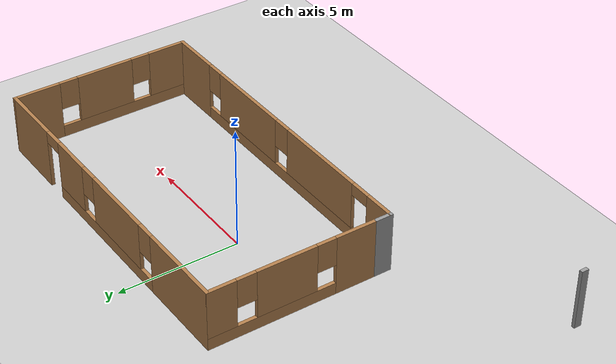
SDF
<sdf version="1.7">
 <world name="default">
  <light name="sun" type="directional">
   <pose>0 0 10 0 -0 0</pose>
   <diffuse>0.8 0.8 0.8 1</diffuse>
   <specular>0.2 0.2 0.2 1</specular>
   <attenuation>
    <range>1000</range>
    <constant>0.9</constant>
    <linear>0.01</linear>
    <quadratic>0.001</quadratic>
   </attenuation>
   <direction>-0.5 0.1 -0.9</direction>
   <spot><inner_angle>0</inner_angle><outer_angle>0</outer_angle><falloff>0</falloff></spot>
  </light>
  <model name="ground_plane">
   <static>1</static>
   <link name="link">
    <collision name="collision">
     <geometry><plane><normal>0 0 1</normal><size>100 100</size></plane></geometry>
     <surface>
      <contact><collide_bitmask>65535</collide_bitmask></contact>
      <friction><ode><mu>100</mu><mu2>50</mu2></ode></friction>
     </surface>
    </collision>
    <visual name="visual">
     <cast_shadows>0</cast_shadows>
     <geometry><plane><normal>0 0 1</normal><size>100 100</size></plane></geometry>
     <material>
      <script><uri>file://media/materials/scripts/gazebo.material</uri><name>Gazebo/Grey</name></script>
     </material>
    </visual>
   </link>
  </model>
  <gravity>0 0 -9.8</gravity>
  <magnetic_field>6e-06 2.3e-05 -4.2e-05</magnetic_field>
  <atmosphere type="adiabatic"/>
  <physics type="ode">
   <max_step_size>0.001</max_step_size>
   <real_time_factor>1</real_time_factor>
   <real_time_update_rate>1000</real_time_update_rate>
  </physics>
  <scene><ambient>0.4 0.4 0.4 1</ambient><background>0.7 0.7 0.7 1</background><shadows>1</shadows></scene>
  <audio><device>default</device></audio>
  <spherical_coordinates>
   <surface_model>EARTH_WGS84</surface_model>
   <latitude_deg>0</latitude_deg>
   <longitude_deg>0</longitude_deg>
   <elevation>0</elevation>
   <heading_deg>0</heading_deg>
  </spherical_coordinates>
  <model name="Test">
   <pose>-0.246704 -1.69561 0 0 -0 0</pose>
   <link name="Wall_0">
    <collision name="Wall_0_Collision">
     <geometry><box><size>0.3 0.15 2.5</size></box></geometry>
     <pose>0 0 1.25 0 -0 0</pose>
    </collision>
    <visual name="Wall_0_Visual">
     <pose>0 0 1.25 0 -0 0</pose>
     <geometry><box><size>0.3 0.15 2.5</size></box></geometry>
     <material>
      <script><uri>file://media/materials/scripts/gazebo.material</uri><name>Gazebo/Grey</name></script>
      <ambient>1 1 1 1</ambient>
     </material>
     <meta><layer>0</layer></meta>
    </visual>
    <pose>-10.0957 -5.51842 0 0 -0 -1.5708</pose>
   </link>
   <link name="Wall_3">
    <pose>-4.00428 2.04341 0 0 -0 1.5708</pose>
    <visual name="Wall_3_Visual_0">
     <pose>-2.65699 0 1.25 0 -0 0</pose>
     <geometry><box><size>1.93602 0.15 2.5</size></box></geometry>
     <material>
      <script><uri>file://media/materials/scripts/gazebo.material</uri><name>Gazebo/Wood</name></script>
      <ambient>1 1 1 1</ambient>
     </material>
     <meta><layer>0</layer></meta>
    </visual>
    <collision name="Wall_3_Collision_0">
     <geometry><box><size>1.93602 0.15 2.5</size></box></geometry>
     <pose>-2.65699 0 1.25 0 -0 0</pose>
    </collision>
    <visual name="Wall_3_Visual_1">
     <pose>0.968008 0 0.25 0 -0 0</pose>
     <geometry><box><size>5.31398 0.15 0.5</size></box></geometry>
     <material>
      <script><uri>file://media/materials/scripts/gazebo.material</uri><name>Gazebo/Wood</name></script>
      <ambient>1 1 1 1</ambient>
     </material>
     <meta><layer>0</layer></meta>
    </visual>
    <collision name="Wall_3_Collision_1">
     <geometry><box><size>5.31398 0.15 0.5</size></box></geometry>
     <pose>0.968008 0 0.25 0 -0 0</pose>
    </collision>
    <visual name="Wall_3_Visual_2">
     <pose>0.360229 0 1.5 0 -0 0</pose>
     <geometry><box><size>2.49843 0.15 2</size></box></geometry>
     <material>
      <script><uri>file://media/materials/scripts/gazebo.material</uri><name>Gazebo/Wood</name></script>
      <ambient>1 1 1 1</ambient>
     </material>
     <meta><layer>0</layer></meta>
    </visual>
    <collision name="Wall_3_Collision_2">
     <geometry><box><size>2.49843 0.15 2</size></box></geometry>
     <pose>0.360229 0 1.5 0 -0 0</pose>
    </collision>
    <visual name="Wall_3_Visual_3">
     <pose>3.01722 0 1.5 0 -0 0</pose>
     <geometry><box><size>1.21556 0.15 2</size></box></geometry>
     <material>
      <script><uri>file://media/materials/scripts/gazebo.material</uri><name>Gazebo/Wood</name></script>
      <ambient>1 1 1 1</ambient>
     </material>
     <meta><layer>0</layer></meta>
    </visual>
    <collision name="Wall_3_Collision_3">
     <geometry><box><size>1.21556 0.15 2</size></box></geometry>
     <pose>3.01722 0 1.5 0 -0 0</pose>
    </collision>
    <visual name="Wall_3_Visual_4">
     <pose>-1.28898 0 1.9 0 -0 0</pose>
     <geometry><box><size>0.8 0.15 1.2</size></box></geometry>
     <material>
      <script><uri>file://media/materials/scripts/gazebo.material</uri><name>Gazebo/Wood</name></script>
      <ambient>1 1 1 1</ambient>
     </material>
     <meta><layer>0</layer></meta>
    </visual>
    <collision name="Wall_3_Collision_4">
     <geometry><box><size>0.8 0.15 1.2</size></box></geometry>
     <pose>-1.28898 0 1.9 0 -0 0</pose>
    </collision>
    <visual name="Wall_3_Visual_5">
     <pose>2.00944 0 1.9 0 -0 0</pose>
     <geometry><box><size>0.8 0.15 1.2</size></box></geometry>
     <material>
      <script><uri>file://media/materials/scripts/gazebo.material</uri><name>Gazebo/Wood</name></script>
      <ambient>1 1 1 1</ambient>
     </material>
     <meta><layer>0</layer></meta>
    </visual>
    <collision name="Wall_3_Collision_5">
     <geometry><box><size>0.8 0.15 1.2</size></box></geometry>
     <pose>2.00944 0 1.9 0 -0 0</pose>
    </collision>
   </link>
   <link name="Wall_4">
    <pose>3.04572 5.59341 0 0 -0 0</pose>
    <visual name="Wall_4_Visual_0">
     <pose>-5.27919 0 1.25 0 -0 0</pose>
     <geometry><box><size>3.69163 0.15 2.5</size></box></geometry>
     <material>
      <script><uri>file://media/materials/scripts/gazebo.material</uri><name>Gazebo/Wood</name></script>
      <ambient>1 1 1 1</ambient>
     </material>
     <meta><layer>0</layer></meta>
    </visual>
    <collision name="Wall_4_Collision_0">
     <geometry><box><size>3.69163 0.15 2.5</size></box></geometry>
     <pose>-5.27919 0 1.25 0 -0 0</pose>
    </collision>
    <visual name="Wall_4_Visual_1">
     <pose>5.70224 0 1.25 0 -0 0</pose>
     <geometry><box><size>2.84552 0.15 2.5</size></box></geometry>
     <material>
      <script><uri>file://media/materials/scripts/gazebo.material</uri><name>Gazebo/Wood</name></script>
      <ambient>1 1 1 1</ambient>
     </material>
     <meta><layer>0</layer></meta>
    </visual>
    <collision name="Wall_4_Collision_1">
     <geometry><box><size>2.84552 0.15 2.5</size></box></geometry>
     <pose>5.70224 0 1.25 0 -0 0</pose>
    </collision>
    <visual name="Wall_4_Visual_2">
     <pose>-0.026944 0 0.25 0 -0 0</pose>
     <geometry><box><size>6.81285 0.15 0.5</size></box></geometry>
     <material>
      <script><uri>file://media/materials/scripts/gazebo.material</uri><name>Gazebo/Wood</name></script>
      <ambient>1 1 1 1</ambient>
     </material>
     <meta><layer>0</layer></meta>
    </visual>
    <collision name="Wall_4_Collision_2">
     <geometry><box><size>6.81285 0.15 0.5</size></box></geometry>
     <pose>-0.026944 0 0.25 0 -0 0</pose>
    </collision>
    <visual name="Wall_4_Visual_3">
     <pose>-0.971855 0 1.5 0 -0 0</pose>
     <geometry><box><size>3.32303 0.15 2</size></box></geometry>
     <material>
      <script><uri>file://media/materials/scripts/gazebo.material</uri><name>Gazebo/Wood</name></script>
      <ambient>1 1 1 1</ambient>
     </material>
     <meta><layer>0</layer></meta>
    </visual>
    <collision name="Wall_4_Collision_3">
     <geometry><box><size>3.32303 0.15 2</size></box></geometry>
     <pose>-0.971855 0 1.5 0 -0 0</pose>
    </collision>
    <visual name="Wall_4_Visual_4">
     <pose>2.43457 0 1.5 0 -0 0</pose>
     <geometry><box><size>1.88982 0.15 2</size></box></geometry>
     <material>
      <script><uri>file://media/materials/scripts/gazebo.material</uri><name>Gazebo/Wood</name></script>
      <ambient>1 1 1 1</ambient>
     </material>
     <meta><layer>0</layer></meta>
    </visual>
    <collision name="Wall_4_Collision_4">
     <geometry><box><size>1.88982 0.15 2</size></box></geometry>
     <pose>2.43457 0 1.5 0 -0 0</pose>
    </collision>
    <visual name="Wall_4_Visual_5">
     <pose>-3.03337 0 1.9 0 -0 0</pose>
     <geometry><box><size>0.8 0.15 1.2</size></box></geometry>
     <material>
      <script><uri>file://media/materials/scripts/gazebo.material</uri><name>Gazebo/Wood</name></script>
      <ambient>1 1 1 1</ambient>
     </material>
     <meta><layer>0</layer></meta>
    </visual>
    <collision name="Wall_4_Collision_5">
     <geometry><box><size>0.8 0.15 1.2</size></box></geometry>
     <pose>-3.03337 0 1.9 0 -0 0</pose>
    </collision>
    <visual name="Wall_4_Visual_6">
     <pose>1.08966 0 1.9 0 -0 0</pose>
     <geometry><box><size>0.8 0.15 1.2</size></box></geometry>
     <material>
      <script><uri>file://media/materials/scripts/gazebo.material</uri><name>Gazebo/Wood</name></script>
      <ambient>1 1 1 1</ambient>
     </material>
     <meta><layer>0</layer></meta>
    </visual>
    <collision name="Wall_4_Collision_6">
     <geometry><box><size>0.8 0.15 1.2</size></box></geometry>
     <pose>1.08966 0 1.9 0 -0 0</pose>
    </collision>
    <visual name="Wall_4_Visual_7">
     <pose>3.82948 0 2.25 0 -0 0</pose>
     <geometry><box><size>0.9 0.15 0.5</size></box></geometry>
     <material>
      <script><uri>file://media/materials/scripts/gazebo.material</uri><name>Gazebo/Wood</name></script>
      <ambient>1 1 1 1</ambient>
     </material>
     <meta><layer>0</layer></meta>
    </visual>
    <collision name="Wall_4_Collision_7">
     <geometry><box><size>0.9 0.15 0.5</size></box></geometry>
     <pose>3.82948 0 2.25 0 -0 0</pose>
    </collision>
   </link>
   <link name="Wall_5">
    <pose>10.0957 1.79341 0 0 -0 -1.5708</pose>
    <visual name="Wall_5_Visual_0">
     <pose>-2.88152 0 1.25 0 -0 0</pose>
     <geometry><box><size>1.98696 0.15 2.5</size></box></geometry>
     <material>
      <script><uri>file://media/materials/scripts/gazebo.material</uri><name>Gazebo/Wood</name></script>
      <ambient>1 1 1 1</ambient>
     </material>
     <meta><layer>0</layer></meta>
    </visual>
    <collision name="Wall_5_Collision_0">
     <geometry><box><size>1.98696 0.15 2.5</size></box></geometry>
     <pose>-2.88152 0 1.25 0 -0 0</pose>
    </collision>
    <visual name="Wall_5_Visual_1">
     <pose>0.993482 0 0.25 0 -0 0</pose>
     <geometry><box><size>5.76304 0.15 0.5</size></box></geometry>
     <material>
      <script><uri>file://media/materials/scripts/gazebo.material</uri><name>Gazebo/Wood</name></script>
      <ambient>1 1 1 1</ambient>
     </material>
     <meta><layer>0</layer></meta>
    </visual>
    <collision name="Wall_5_Collision_1">
     <geometry><box><size>5.76304 0.15 0.5</size></box></geometry>
     <pose>0.993482 0 0.25 0 -0 0</pose>
    </collision>
    <visual name="Wall_5_Visual_2">
     <pose>0.134576 0 1.5 0 -0 0</pose>
     <geometry><box><size>2.44522 0.15 2</size></box></geometry>
     <material>
      <script><uri>file://media/materials/scripts/gazebo.material</uri><name>Gazebo/Wood</name></script>
      <ambient>1 1 1 1</ambient>
     </material>
     <meta><layer>0</layer></meta>
    </visual>
    <collision name="Wall_5_Collision_2">
     <geometry><box><size>2.44522 0.15 2</size></box></geometry>
     <pose>0.134576 0 1.5 0 -0 0</pose>
    </collision>
    <visual name="Wall_5_Visual_3">
     <pose>3.01609 0 1.5 0 -0 0</pose>
     <geometry><box><size>1.71781 0.15 2</size></box></geometry>
     <material>
      <script><uri>file://media/materials/scripts/gazebo.material</uri><name>Gazebo/Wood</name></script>
      <ambient>1 1 1 1</ambient>
     </material>
     <meta><layer>0</layer></meta>
    </visual>
    <collision name="Wall_5_Collision_3">
     <geometry><box><size>1.71781 0.15 2</size></box></geometry>
     <pose>3.01609 0 1.5 0 -0 0</pose>
    </collision>
    <visual name="Wall_5_Visual_4">
     <pose>-1.48804 0 1.9 0 -0 0</pose>
     <geometry><box><size>0.8 0.15 1.2</size></box></geometry>
     <material>
      <script><uri>file://media/materials/scripts/gazebo.material</uri><name>Gazebo/Wood</name></script>
      <ambient>1 1 1 1</ambient>
     </material>
     <meta><layer>0</layer></meta>
    </visual>
    <collision name="Wall_5_Collision_4">
     <geometry><box><size>0.8 0.15 1.2</size></box></geometry>
     <pose>-1.48804 0 1.9 0 -0 0</pose>
    </collision>
    <visual name="Wall_5_Visual_5">
     <pose>1.75719 0 1.9 0 -0 0</pose>
     <geometry><box><size>0.8 0.15 1.2</size></box></geometry>
     <material>
      <script><uri>file://media/materials/scripts/gazebo.material</uri><name>Gazebo/Wood</name></script>
      <ambient>1 1 1 1</ambient>
     </material>
     <meta><layer>0</layer></meta>
    </visual>
    <collision name="Wall_5_Collision_5">
     <geometry><box><size>0.8 0.15 1.2</size></box></geometry>
     <pose>1.75719 0 1.9 0 -0 0</pose>
    </collision>
   </link>
   <link name="Wall_6">
    <pose>3.04572 -2.00659 0 0 -0 3.14159</pose>
    <visual name="Wall_6_Visual_0">
     <pose>-5.99644 0 1.25 0 -0 0</pose>
     <geometry><box><size>2.25711 0.15 2.5</size></box></geometry>
     <material>
      <script><uri>file://media/materials/scripts/gazebo.material</uri><name>Gazebo/Wood</name></script>
      <ambient>1 1 1 1</ambient>
     </material>
     <meta><layer>0</layer></meta>
    </visual>
    <collision name="Wall_6_Collision_0">
     <geometry><box><size>2.25711 0.15 2.5</size></box></geometry>
     <pose>-5.99644 0 1.25 0 -0 0</pose>
    </collision>
    <visual name="Wall_6_Visual_1">
     <pose>6.43469 0 1.25 0 -0 0</pose>
     <geometry><box><size>1.38061 0.15 2.5</size></box></geometry>
     <material>
      <script><uri>file://media/materials/scripts/gazebo.material</uri><name>Gazebo/Wood</name></script>
      <ambient>1 1 1 1</ambient>
     </material>
     <meta><layer>0</layer></meta>
    </visual>
    <collision name="Wall_6_Collision_1">
     <geometry><box><size>1.38061 0.15 2.5</size></box></geometry>
     <pose>6.43469 0 1.25 0 -0 0</pose>
    </collision>
    <visual name="Wall_6_Visual_2">
     <pose>-0.01175 0 0.25 0 -0 0</pose>
     <geometry><box><size>9.71227 0.15 0.5</size></box></geometry>
     <material>
      <script><uri>file://media/materials/scripts/gazebo.material</uri><name>Gazebo/Wood</name></script>
      <ambient>1 1 1 1</ambient>
     </material>
     <meta><layer>0</layer></meta>
    </visual>
    <collision name="Wall_6_Collision_2">
     <geometry><box><size>9.71227 0.15 0.5</size></box></geometry>
     <pose>-0.01175 0 0.25 0 -0 0</pose>
    </collision>
    <visual name="Wall_6_Visual_3">
     <pose>-2.08717 0 1.5 0 -0 0</pose>
     <geometry><box><size>3.96144 0.15 2</size></box></geometry>
     <material>
      <script><uri>file://media/materials/scripts/gazebo.material</uri><name>Gazebo/Wood</name></script>
      <ambient>1 1 1 1</ambient>
     </material>
     <meta><layer>0</layer></meta>
    </visual>
    <collision name="Wall_6_Collision_3">
     <geometry><box><size>3.96144 0.15 2</size></box></geometry>
     <pose>-2.08717 0 1.5 0 -0 0</pose>
    </collision>
    <visual name="Wall_6_Visual_4">
     <pose>2.76897 0 1.5 0 -0 0</pose>
     <geometry><box><size>4.15084 0.15 2</size></box></geometry>
     <material>
      <script><uri>file://media/materials/scripts/gazebo.material</uri><name>Gazebo/Wood</name></script>
      <ambient>1 1 1 1</ambient>
     </material>
     <meta><layer>0</layer></meta>
    </visual>
    <collision name="Wall_6_Collision_4">
     <geometry><box><size>4.15084 0.15 2</size></box></geometry>
     <pose>2.76897 0 1.5 0 -0 0</pose>
    </collision>
    <visual name="Wall_6_Visual_5">
     <pose>-4.46789 0 1.9 0 -0 0</pose>
     <geometry><box><size>0.8 0.15 1.2</size></box></geometry>
     <material>
      <script><uri>file://media/materials/scripts/gazebo.material</uri><name>Gazebo/Wood</name></script>
      <ambient>1 1 1 1</ambient>
     </material>
     <meta><layer>0</layer></meta>
    </visual>
    <collision name="Wall_6_Collision_5">
     <geometry><box><size>0.8 0.15 1.2</size></box></geometry>
     <pose>-4.46789 0 1.9 0 -0 0</pose>
    </collision>
    <visual name="Wall_6_Visual_6">
     <pose>0.29355 0 1.9 0 -0 0</pose>
     <geometry><box><size>0.8 0.15 1.2</size></box></geometry>
     <material>
      <script><uri>file://media/materials/scripts/gazebo.material</uri><name>Gazebo/Wood</name></script>
      <ambient>1 1 1 1</ambient>
     </material>
     <meta><layer>0</layer></meta>
    </visual>
    <collision name="Wall_6_Collision_6">
     <geometry><box><size>0.8 0.15 1.2</size></box></geometry>
     <pose>0.29355 0 1.9 0 -0 0</pose>
    </collision>
    <visual name="Wall_6_Visual_7">
     <pose>5.29439 0 2.25 0 -0 0</pose>
     <geometry><box><size>0.9 0.15 0.5</size></box></geometry>
     <material>
      <script><uri>file://media/materials/scripts/gazebo.material</uri><name>Gazebo/Wood</name></script>
      <ambient>1 1 1 1</ambient>
     </material>
     <meta><layer>0</layer></meta>
    </visual>
    <collision name="Wall_6_Collision_7">
     <geometry><box><size>0.9 0.15 0.5</size></box></geometry>
     <pose>5.29439 0 2.25 0 -0 0</pose>
    </collision>
   </link>
   <link name="Wall_7">
    <collision name="Wall_7_Collision">
     <geometry><box><size>0.75 0.15 2.5</size></box></geometry>
     <pose>0 0 1.25 0 -0 0</pose>
    </collision>
    <visual name="Wall_7_Visual">
     <pose>0 0 1.25 0 -0 0</pose>
     <geometry><box><size>0.75 0.15 2.5</size></box></geometry>
     <material>
      <script><uri>file://media/materials/scripts/gazebo.material</uri><name>Gazebo/Grey</name></script>
      <ambient>1 1 1 1</ambient>
     </material>
     <meta><layer>0</layer></meta>
    </visual>
    <pose>-4.00428 -1.70659 0 0 -0 1.5708</pose>
   </link>
   <static>1</static>
  </model>
 </world>
</sdf>
